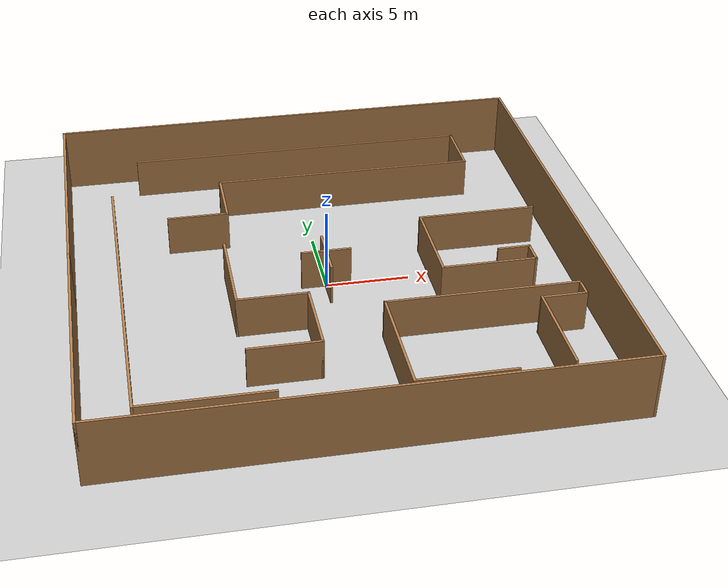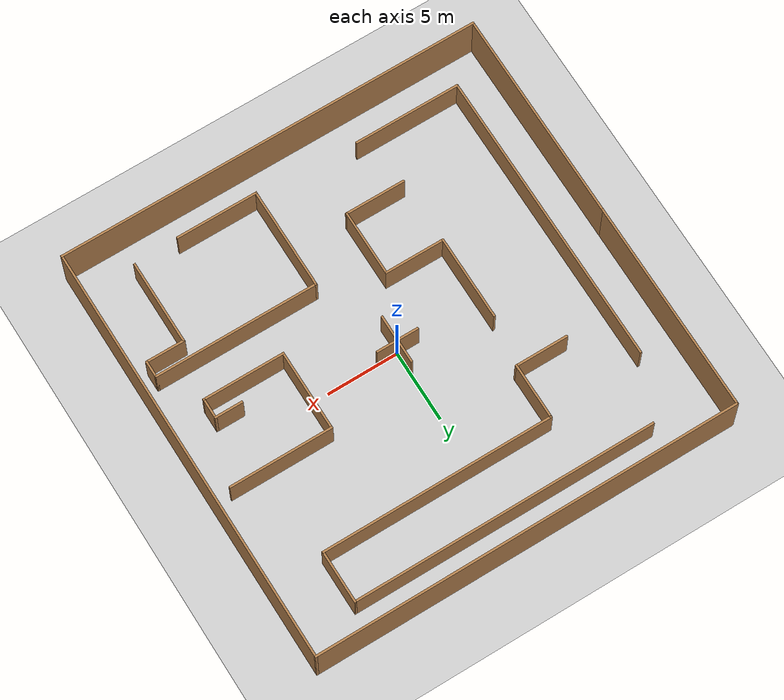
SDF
<sdf version="1.6">
 <world name="default">
  <light name="sun" type="directional">
   <pose>0 0 10 0 -0 0</pose>
   <diffuse>0.8 0.8 0.8 1</diffuse>
   <specular>0.2 0.2 0.2 1</specular>
   <attenuation>
    <range>1000</range>
    <constant>0.9</constant>
    <linear>0.01</linear>
    <quadratic>0.001</quadratic>
   </attenuation>
   <direction>-0.5 0.1 -0.9</direction>
  </light>
  <model name="ground_plane">
   <static>1</static>
   <link name="link">
    <collision name="collision">
     <geometry><plane><normal>0 0 1</normal><size>100 100</size></plane></geometry>
     <surface>
      <contact><collide_bitmask>65535</collide_bitmask></contact>
      <friction><ode><mu>100</mu><mu2>50</mu2></ode></friction>
     </surface>
    </collision>
    <visual name="visual">
     <cast_shadows>0</cast_shadows>
     <geometry><plane><normal>0 0 1</normal><size>100 100</size></plane></geometry>
     <material>
      <script><uri>file://media/materials/scripts/gazebo.material</uri><name>Gazebo/Grey</name></script>
     </material>
    </visual>
   </link>
  </model>
  <gravity>0 0 -9.8</gravity>
  <magnetic_field>6e-06 2.3e-05 -4.2e-05</magnetic_field>
  <atmosphere type="adiabatic"/>
  <physics name="default_physics" default="0" type="ode">
   <max_step_size>0.001</max_step_size>
   <real_time_factor>1</real_time_factor>
   <real_time_update_rate>1000</real_time_update_rate>
  </physics>
  <scene><ambient>0.4 0.4 0.4 1</ambient><background>0.7 0.7 0.7 1</background><shadows>1</shadows></scene>
  <spherical_coordinates>
   <surface_model>EARTH_WGS84</surface_model>
   <latitude_deg>0</latitude_deg>
   <longitude_deg>0</longitude_deg>
   <elevation>0</elevation>
   <heading_deg>0</heading_deg>
  </spherical_coordinates>
  <model name="t1">
   <pose>-0.059 -0.131 0 0 -0 0</pose>
   <link name="Wall_10">
    <collision name="Wall_10_Collision">
     <geometry><box><size>15 0.15 4</size></box></geometry>
     <pose>0 0 2 0 -0 0</pose>
    </collision>
    <visual name="Wall_10_Visual">
     <pose>0 0 2 0 -0 0</pose>
     <geometry><box><size>15 0.15 4</size></box></geometry>
     <material>
      <script><uri>file://media/materials/scripts/gazebo.material</uri><name>Gazebo/Wood</name></script>
      <ambient>1 1 1 1</ambient>
     </material>
     <meta><layer>0</layer></meta>
    </visual>
    <pose>-14.8 -7.375 0 0 -0 -1.5708</pose>
   </link>
   <link name="Wall_11">
    <collision name="Wall_11_Collision">
     <geometry><box><size>29.75 0.15 4</size></box></geometry>
     <pose>0 0 2 0 -0 0</pose>
    </collision>
    <visual name="Wall_11_Visual">
     <pose>0 0 2 0 -0 0</pose>
     <geometry><box><size>29.75 0.15 4</size></box></geometry>
     <material>
      <script><uri>file://media/materials/scripts/gazebo.material</uri><name>Gazebo/Wood</name></script>
      <ambient>1 1 1 1</ambient>
     </material>
     <meta><layer>0</layer></meta>
    </visual>
    <pose>-0 -14.8 0 0 -0 0</pose>
   </link>
   <link name="Wall_12">
    <collision name="Wall_12_Collision">
     <geometry><box><size>29.75 0.15 4</size></box></geometry>
     <pose>0 0 2 0 -0 0</pose>
    </collision>
    <visual name="Wall_12_Visual">
     <pose>0 0 2 0 -0 0</pose>
     <geometry><box><size>29.75 0.15 4</size></box></geometry>
     <material>
      <script><uri>file://media/materials/scripts/gazebo.material</uri><name>Gazebo/Wood</name></script>
      <ambient>1 1 1 1</ambient>
     </material>
     <meta><layer>0</layer></meta>
    </visual>
    <pose>14.8 -0 0 0 -0 1.5708</pose>
   </link>
   <link name="Wall_13">
    <collision name="Wall_13_Collision">
     <geometry><box><size>29.75 0.15 4</size></box></geometry>
     <pose>0 0 2 0 -0 0</pose>
    </collision>
    <visual name="Wall_13_Visual">
     <pose>0 0 2 0 -0 0</pose>
     <geometry><box><size>29.75 0.15 4</size></box></geometry>
     <material>
      <script><uri>file://media/materials/scripts/gazebo.material</uri><name>Gazebo/Wood</name></script>
      <ambient>1 1 1 1</ambient>
     </material>
     <meta><layer>0</layer></meta>
    </visual>
    <pose>-0 14.8 0 0 -0 3.14159</pose>
   </link>
   <link name="Wall_14">
    <collision name="Wall_14_Collision">
     <geometry><box><size>14.9 0.15 4</size></box></geometry>
     <pose>0 0 2 0 -0 0</pose>
    </collision>
    <visual name="Wall_14_Visual">
     <pose>0 0 2 0 -0 0</pose>
     <geometry><box><size>14.9 0.15 4</size></box></geometry>
     <material>
      <script><uri>file://media/materials/scripts/gazebo.material</uri><name>Gazebo/Wood</name></script>
      <ambient>1 1 1 1</ambient>
     </material>
     <meta><layer>0</layer></meta>
    </visual>
    <pose>-14.8 7.425 0 0 -0 -1.5708</pose>
   </link>
   <link name="Wall_16">
    <collision name="Wall_16_Collision">
     <geometry><box><size>3.5 0.15 2.5</size></box></geometry>
     <pose>0 0 1.25 0 -0 0</pose>
    </collision>
    <visual name="Wall_16_Visual">
     <pose>0 0 1.25 0 -0 0</pose>
     <geometry><box><size>3.5 0.15 2.5</size></box></geometry>
     <material>
      <script><uri>file://media/materials/scripts/gazebo.material</uri><name>Gazebo/Wood</name></script>
      <ambient>1 1 1 1</ambient>
     </material>
     <meta><layer>0</layer></meta>
    </visual>
    <pose>0.051051 0.050426 0 0 -0 -1.5708</pose>
   </link>
   <link name="Wall_18">
    <collision name="Wall_18_Collision">
     <geometry><box><size>3 0.15 2.5</size></box></geometry>
     <pose>0 0 1.25 0 -0 0</pose>
    </collision>
    <visual name="Wall_18_Visual">
     <pose>0 0 1.25 0 -0 0</pose>
     <geometry><box><size>3 0.15 2.5</size></box></geometry>
     <material>
      <script><uri>file://media/materials/scripts/gazebo.material</uri><name>Gazebo/Wood</name></script>
      <ambient>1 1 1 1</ambient>
     </material>
     <meta><layer>0</layer></meta>
    </visual>
    <pose>0.050511 0.13701 0 0 -0 0</pose>
   </link>
   <link name="Wall_21">
    <collision name="Wall_21_Collision">
     <geometry><box><size>6 0.15 2.5</size></box></geometry>
     <pose>0 0 1.25 0 -0 0</pose>
    </collision>
    <visual name="Wall_21_Visual">
     <pose>0 0 1.25 0 -0 0</pose>
     <geometry><box><size>6 0.15 2.5</size></box></geometry>
     <material>
      <script><uri>file://media/materials/scripts/gazebo.material</uri><name>Gazebo/Wood</name></script>
      <ambient>1 1 1 1</ambient>
     </material>
     <meta><layer>0</layer></meta>
    </visual>
    <pose>-5.78654 -1.0334 0 0 -0 -1.5708</pose>
   </link>
   <link name="Wall_22">
    <collision name="Wall_22_Collision">
     <geometry><box><size>4.25 0.15 2.5</size></box></geometry>
     <pose>0 0 1.25 0 -0 0</pose>
    </collision>
    <visual name="Wall_22_Visual">
     <pose>0 0 1.25 0 -0 0</pose>
     <geometry><box><size>4.25 0.15 2.5</size></box></geometry>
     <material>
      <script><uri>file://media/materials/scripts/gazebo.material</uri><name>Gazebo/Wood</name></script>
      <ambient>1 1 1 1</ambient>
     </material>
     <meta><layer>0</layer></meta>
    </visual>
    <pose>-3.73654 -3.9584 0 0 -0 0</pose>
   </link>
   <link name="Wall_23">
    <collision name="Wall_23_Collision">
     <geometry><box><size>4.75 0.15 2.5</size></box></geometry>
     <pose>0 0 1.25 0 -0 0</pose>
    </collision>
    <visual name="Wall_23_Visual">
     <pose>0 0 1.25 0 -0 0</pose>
     <geometry><box><size>4.75 0.15 2.5</size></box></geometry>
     <material>
      <script><uri>file://media/materials/scripts/gazebo.material</uri><name>Gazebo/Wood</name></script>
      <ambient>1 1 1 1</ambient>
     </material>
     <meta><layer>0</layer></meta>
    </visual>
    <pose>-1.68654 -6.2584 0 0 -0 -1.5708</pose>
   </link>
   <link name="Wall_24">
    <collision name="Wall_24_Collision">
     <geometry><box><size>4.25 0.15 2.5</size></box></geometry>
     <pose>0 0 1.25 0 -0 0</pose>
    </collision>
    <visual name="Wall_24_Visual">
     <pose>0 0 1.25 0 -0 0</pose>
     <geometry><box><size>4.25 0.15 2.5</size></box></geometry>
     <material>
      <script><uri>file://media/materials/scripts/gazebo.material</uri><name>Gazebo/Wood</name></script>
      <ambient>1 1 1 1</ambient>
     </material>
     <meta><layer>0</layer></meta>
    </visual>
    <pose>-3.73654 -8.5584 0 0 -0 3.14159</pose>
   </link>
   <link name="Wall_26">
    <collision name="Wall_26_Collision">
     <geometry><box><size>7.25 0.15 2.5</size></box></geometry>
     <pose>0 0 1.25 0 -0 0</pose>
    </collision>
    <visual name="Wall_26_Visual">
     <pose>0 0 1.25 0 -0 0</pose>
     <geometry><box><size>7.25 0.15 2.5</size></box></geometry>
     <material>
      <script><uri>file://media/materials/scripts/gazebo.material</uri><name>Gazebo/Wood</name></script>
      <ambient>1 1 1 1</ambient>
     </material>
     <meta><layer>0</layer></meta>
    </visual>
    <pose>9.94394 2.8081 0 0 -0 3.14159</pose>
   </link>
   <link name="Wall_27">
    <collision name="Wall_27_Collision">
     <geometry><box><size>5.75 0.15 2.5</size></box></geometry>
     <pose>0 0 1.25 0 -0 0</pose>
    </collision>
    <visual name="Wall_27_Visual">
     <pose>0 0 1.25 0 -0 0</pose>
     <geometry><box><size>5.75 0.15 2.5</size></box></geometry>
     <material>
      <script><uri>file://media/materials/scripts/gazebo.material</uri><name>Gazebo/Wood</name></script>
      <ambient>1 1 1 1</ambient>
     </material>
     <meta><layer>0</layer></meta>
    </visual>
    <pose>6.39394 0.008103 0 0 -0 -1.5708</pose>
   </link>
   <link name="Wall_28">
    <collision name="Wall_28_Collision">
     <geometry><box><size>5.75 0.15 2.5</size></box></geometry>
     <pose>0 0 1.25 0 -0 0</pose>
    </collision>
    <visual name="Wall_28_Visual">
     <pose>0 0 1.25 0 -0 0</pose>
     <geometry><box><size>5.75 0.15 2.5</size></box></geometry>
     <material>
      <script><uri>file://media/materials/scripts/gazebo.material</uri><name>Gazebo/Wood</name></script>
      <ambient>1 1 1 1</ambient>
     </material>
     <meta><layer>0</layer></meta>
    </visual>
    <pose>9.19394 -2.7919 0 0 -0 0</pose>
   </link>
   <link name="Wall_29">
    <collision name="Wall_29_Collision">
     <geometry><box><size>1.5 0.15 2.5</size></box></geometry>
     <pose>0 0 1.25 0 -0 0</pose>
    </collision>
    <visual name="Wall_29_Visual">
     <pose>0 0 1.25 0 -0 0</pose>
     <geometry><box><size>1.5 0.15 2.5</size></box></geometry>
     <material>
      <script><uri>file://media/materials/scripts/gazebo.material</uri><name>Gazebo/Wood</name></script>
      <ambient>1 1 1 1</ambient>
     </material>
     <meta><layer>0</layer></meta>
    </visual>
    <pose>11.9939 -2.1169 0 0 -0 1.5708</pose>
   </link>
   <link name="Wall_30">
    <collision name="Wall_30_Collision">
     <geometry><box><size>2 0.15 2.5</size></box></geometry>
     <pose>0 0 1.25 0 -0 0</pose>
    </collision>
    <visual name="Wall_30_Visual">
     <pose>0 0 1.25 0 -0 0</pose>
     <geometry><box><size>2 0.15 2.5</size></box></geometry>
     <material>
      <script><uri>file://media/materials/scripts/gazebo.material</uri><name>Gazebo/Wood</name></script>
      <ambient>1 1 1 1</ambient>
     </material>
     <meta><layer>0</layer></meta>
    </visual>
    <pose>11.0689 -1.4419 0 0 -0 3.14159</pose>
   </link>
   <link name="Wall_32">
    <collision name="Wall_32_Collision">
     <geometry><box><size>21.25 0.15 2.5</size></box></geometry>
     <pose>0 0 1.25 0 -0 0</pose>
    </collision>
    <visual name="Wall_32_Visual">
     <pose>0 0 1.25 0 -0 0</pose>
     <geometry><box><size>21.25 0.15 2.5</size></box></geometry>
     <material>
      <script><uri>file://media/materials/scripts/gazebo.material</uri><name>Gazebo/Wood</name></script>
      <ambient>1 1 1 1</ambient>
     </material>
     <meta><layer>0</layer></meta>
    </visual>
    <pose>0.350374 12.8114 0 0 -0 0</pose>
   </link>
   <link name="Wall_33">
    <collision name="Wall_33_Collision">
     <geometry><box><size>3.75 0.15 2.5</size></box></geometry>
     <pose>0 0 1.25 0 -0 0</pose>
    </collision>
    <visual name="Wall_33_Visual">
     <pose>0 0 1.25 0 -0 0</pose>
     <geometry><box><size>3.75 0.15 2.5</size></box></geometry>
     <material>
      <script><uri>file://media/materials/scripts/gazebo.material</uri><name>Gazebo/Wood</name></script>
      <ambient>1 1 1 1</ambient>
     </material>
     <meta><layer>0</layer></meta>
    </visual>
    <pose>10.9004 11.0114 0 0 -0 -1.5708</pose>
   </link>
   <link name="Wall_34">
    <collision name="Wall_34_Collision">
     <geometry><box><size>16.25 0.15 2.5</size></box></geometry>
     <pose>0 0 1.25 0 -0 0</pose>
    </collision>
    <visual name="Wall_34_Visual">
     <pose>0 0 1.25 0 -0 0</pose>
     <geometry><box><size>16.25 0.15 2.5</size></box></geometry>
     <material>
      <script><uri>file://media/materials/scripts/gazebo.material</uri><name>Gazebo/Wood</name></script>
      <ambient>1 1 1 1</ambient>
     </material>
     <meta><layer>0</layer></meta>
    </visual>
    <pose>2.85037 9.21136 0 0 -0 3.14159</pose>
   </link>
   <link name="Wall_35">
    <collision name="Wall_35_Collision">
     <geometry><box><size>4 0.15 2.5</size></box></geometry>
     <pose>0 0 1.25 0 -0 0</pose>
    </collision>
    <visual name="Wall_35_Visual">
     <pose>0 0 1.25 0 -0 0</pose>
     <geometry><box><size>4 0.15 2.5</size></box></geometry>
     <material>
      <script><uri>file://media/materials/scripts/gazebo.material</uri><name>Gazebo/Wood</name></script>
      <ambient>1 1 1 1</ambient>
     </material>
     <meta><layer>0</layer></meta>
    </visual>
    <pose>-5.19963 7.28636 0 0 -0 -1.5708</pose>
   </link>
   <link name="Wall_36">
    <collision name="Wall_36_Collision">
     <geometry><box><size>3.75 0.15 2.5</size></box></geometry>
     <pose>0 0 1.25 0 -0 0</pose>
    </collision>
    <visual name="Wall_36_Visual">
     <pose>0 0 1.25 0 -0 0</pose>
     <geometry><box><size>3.75 0.15 2.5</size></box></geometry>
     <material>
      <script><uri>file://media/materials/scripts/gazebo.material</uri><name>Gazebo/Wood</name></script>
      <ambient>1 1 1 1</ambient>
     </material>
     <meta><layer>0</layer></meta>
    </visual>
    <pose>-6.99963 5.36136 0 0 -0 3.14159</pose>
   </link>
   <link name="Wall_38">
    <collision name="Wall_38_Collision">
     <geometry><box><size>7.25 0.15 2.5</size></box></geometry>
     <pose>0 0 1.25 0 -0 0</pose>
    </collision>
    <visual name="Wall_38_Visual">
     <pose>0 0 1.25 0 -0 0</pose>
     <geometry><box><size>7.25 0.15 2.5</size></box></geometry>
     <material>
      <script><uri>file://media/materials/scripts/gazebo.material</uri><name>Gazebo/Wood</name></script>
      <ambient>1 1 1 1</ambient>
     </material>
     <meta><layer>0</layer></meta>
    </visual>
    <pose>2.35654 -9.14497 0 0 -0 -1.5708</pose>
   </link>
   <link name="Wall_39">
    <collision name="Wall_39_Collision">
     <geometry><box><size>5.75 0.15 2.5</size></box></geometry>
     <pose>0 0 1.25 0 -0 0</pose>
    </collision>
    <visual name="Wall_39_Visual">
     <pose>0 0 1.25 0 -0 0</pose>
     <geometry><box><size>5.75 0.15 2.5</size></box></geometry>
     <material>
      <script><uri>file://media/materials/scripts/gazebo.material</uri><name>Gazebo/Wood</name></script>
      <ambient>1 1 1 1</ambient>
     </material>
     <meta><layer>0</layer></meta>
    </visual>
    <pose>5.15654 -12.695 0 0 -0 0</pose>
   </link>
   <link name="Wall_41">
    <collision name="Wall_41_Collision">
     <geometry><box><size>11.5 0.15 2.5</size></box></geometry>
     <pose>0 0 1.25 0 -0 0</pose>
    </collision>
    <visual name="Wall_41_Visual">
     <pose>0 0 1.25 0 -0 0</pose>
     <geometry><box><size>11.5 0.15 2.5</size></box></geometry>
     <material>
      <script><uri>file://media/materials/scripts/gazebo.material</uri><name>Gazebo/Wood</name></script>
      <ambient>1 1 1 1</ambient>
     </material>
     <meta><layer>0</layer></meta>
    </visual>
    <pose>8.03154 -5.59497 0 0 -0 0</pose>
   </link>
   <link name="Wall_42">
    <collision name="Wall_42_Collision">
     <geometry><box><size>1.25 0.15 2.5</size></box></geometry>
     <pose>0 0 1.25 0 -0 0</pose>
    </collision>
    <visual name="Wall_42_Visual">
     <pose>0 0 1.25 0 -0 0</pose>
     <geometry><box><size>1.25 0.15 2.5</size></box></geometry>
     <material>
      <script><uri>file://media/materials/scripts/gazebo.material</uri><name>Gazebo/Wood</name></script>
      <ambient>1 1 1 1</ambient>
     </material>
     <meta><layer>0</layer></meta>
    </visual>
    <pose>13.7065 -6.14497 0 0 -0 -1.5708</pose>
   </link>
   <link name="Wall_43">
    <collision name="Wall_43_Collision">
     <geometry><box><size>2.75 0.15 2.5</size></box></geometry>
     <pose>0 0 1.25 0 -0 0</pose>
    </collision>
    <visual name="Wall_43_Visual">
     <pose>0 0 1.25 0 -0 0</pose>
     <geometry><box><size>2.75 0.15 2.5</size></box></geometry>
     <material>
      <script><uri>file://media/materials/scripts/gazebo.material</uri><name>Gazebo/Wood</name></script>
      <ambient>1 1 1 1</ambient>
     </material>
     <meta><layer>0</layer></meta>
    </visual>
    <pose>12.4065 -6.69497 0 0 -0 3.14159</pose>
   </link>
   <link name="Wall_44">
    <collision name="Wall_44_Collision">
     <geometry><box><size>6 0.15 2.5</size></box></geometry>
     <pose>0 0 1.25 0 -0 0</pose>
    </collision>
    <visual name="Wall_44_Visual">
     <pose>0 0 1.25 0 -0 0</pose>
     <geometry><box><size>6 0.15 2.5</size></box></geometry>
     <material>
      <script><uri>file://media/materials/scripts/gazebo.material</uri><name>Gazebo/Wood</name></script>
      <ambient>1 1 1 1</ambient>
     </material>
     <meta><layer>0</layer></meta>
    </visual>
    <pose>11.1065 -9.61997 0 0 -0 -1.5708</pose>
   </link>
   <link name="Wall_46">
    <collision name="Wall_46_Collision">
     <geometry><box><size>21 0.15 2.5</size></box></geometry>
     <pose>0 0 1.25 0 -0 0</pose>
    </collision>
    <visual name="Wall_46_Visual">
     <pose>0 0 1.25 0 -0 0</pose>
     <geometry><box><size>21 0.15 2.5</size></box></geometry>
     <material>
      <script><uri>file://media/materials/scripts/gazebo.material</uri><name>Gazebo/Wood</name></script>
      <ambient>1 1 1 1</ambient>
     </material>
     <meta><layer>0</layer></meta>
    </visual>
    <pose>-12.0697 -1.85291 0 0 -0 -1.5708</pose>
   </link>
   <link name="Wall_47">
    <collision name="Wall_47_Collision">
     <geometry><box><size>7.5 0.15 2.5</size></box></geometry>
     <pose>0 0 1.25 0 -0 0</pose>
    </collision>
    <visual name="Wall_47_Visual">
     <pose>0 0 1.25 0 -0 0</pose>
     <geometry><box><size>7.5 0.15 2.5</size></box></geometry>
     <material>
      <script><uri>file://media/materials/scripts/gazebo.material</uri><name>Gazebo/Wood</name></script>
      <ambient>1 1 1 1</ambient>
     </material>
     <meta><layer>0</layer></meta>
    </visual>
    <pose>-8.39468 -12.2779 0 0 -0 0</pose>
   </link>
   <static>1</static>
  </model>
 </world>
</sdf>
